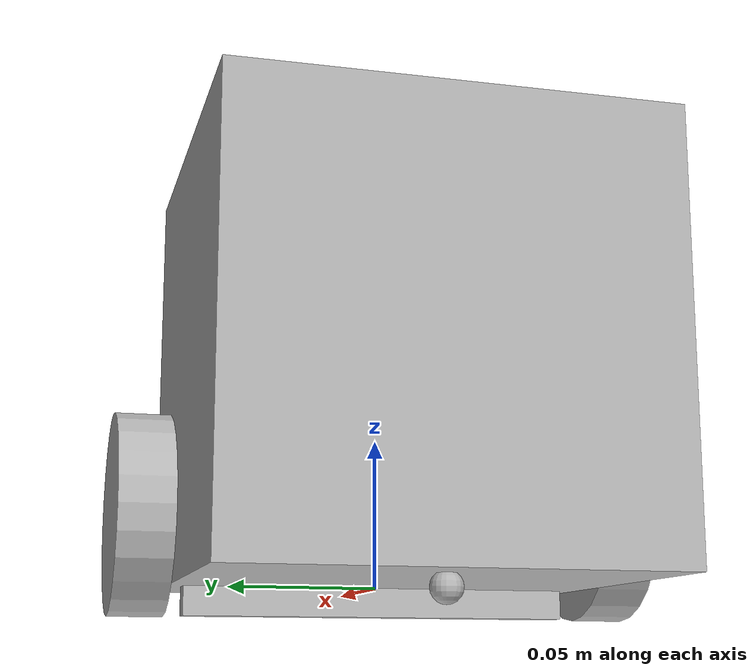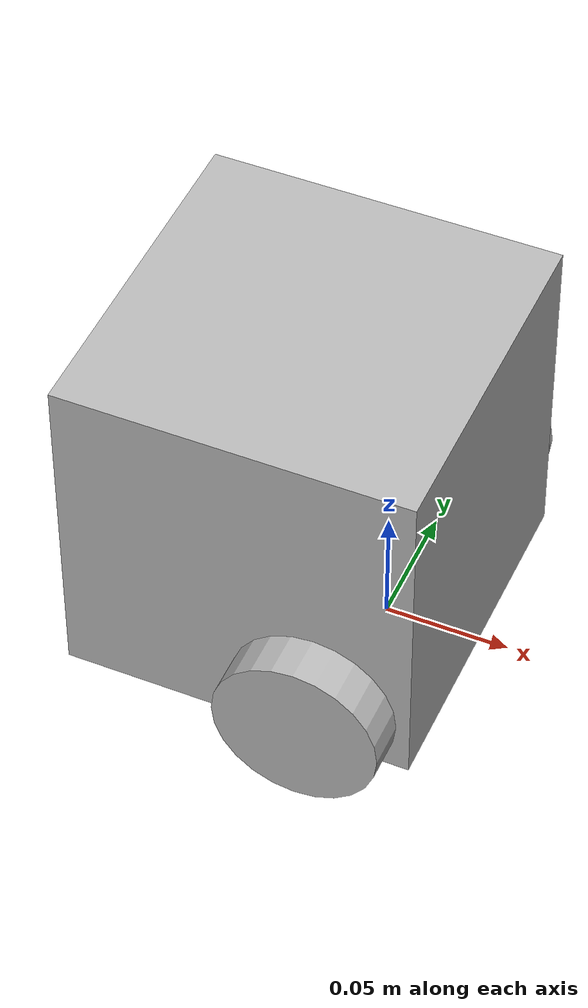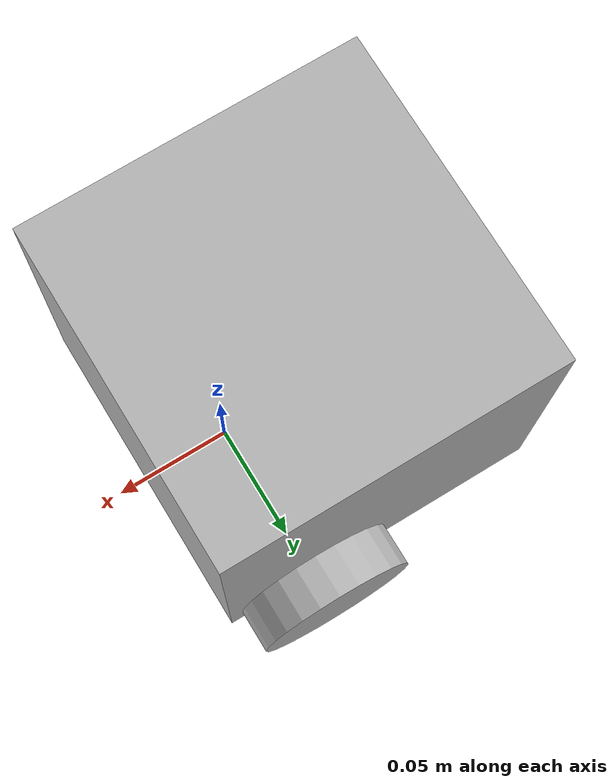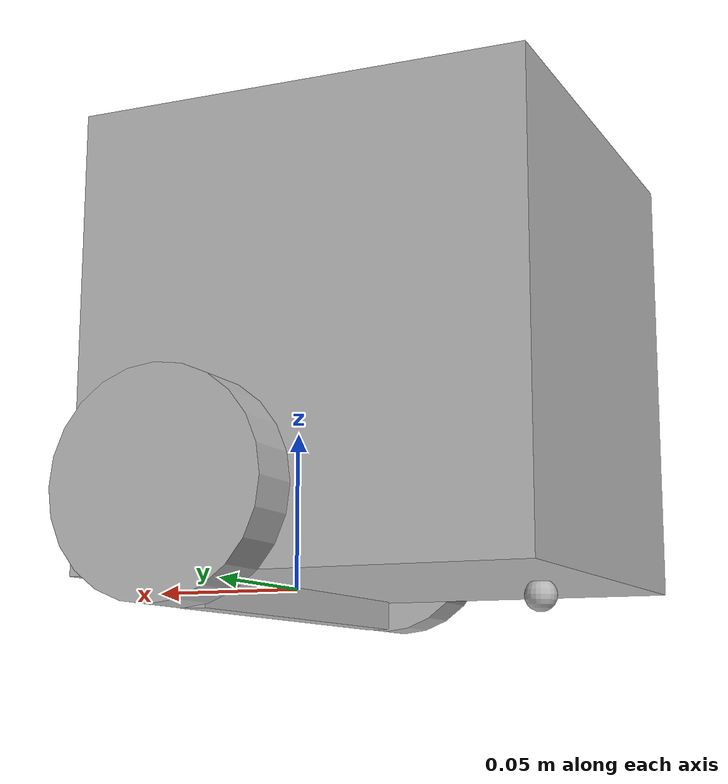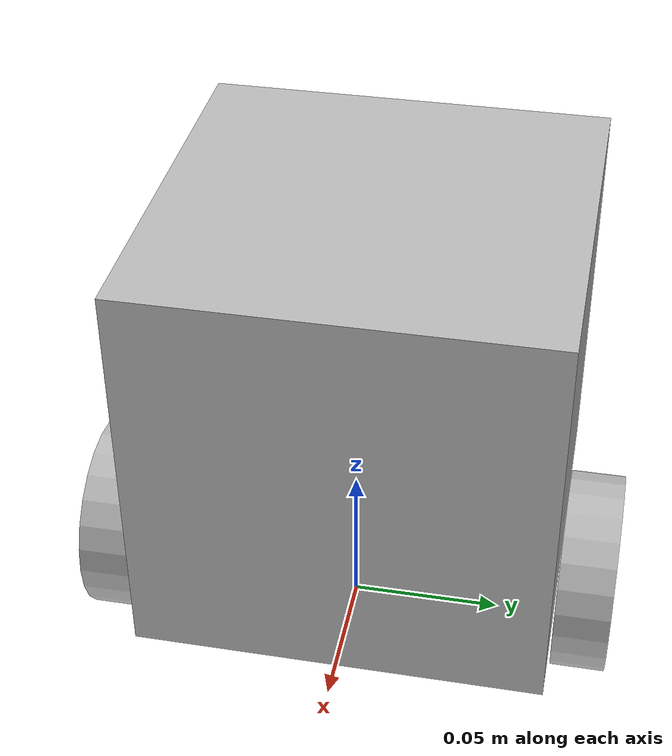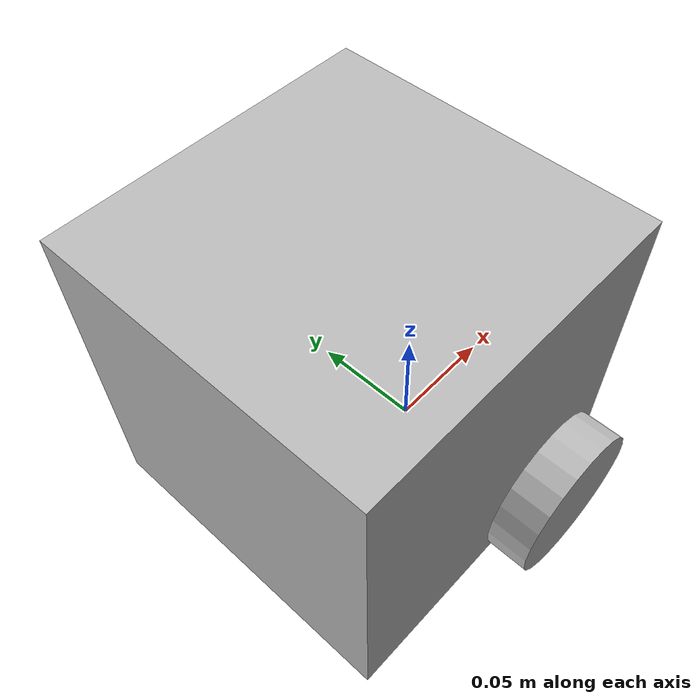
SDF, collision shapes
<?xml version="1.0" ?>
<sdf version="1.5">
  <model name="turtlebot3_burger_realsense">
    <plugin name="realsense_plugin" filename="librealsense_gazebo_plugin.so"/>
    <link name="base">

      <inertial>
        <pose>-0.032 0 0.070 0 0 0</pose>
        <inertia>
          <ixx>0.001</ixx>
          <ixy>0.000</ixy>
          <ixz>0.000</ixz>
          <iyy>0.001</iyy>
          <iyz>0.000</iyz>
          <izz>0.001</izz>
        </inertia>
        <mass>1.0</mass>
      </inertial>

      <collision name="base_collision">
        <pose>-0.032 0 0.070 0 0 0</pose>
        <geometry>
          <box>
            <size>0.140 0.140 0.140</size>
          </box>
        </geometry>
      </collision>

      <visual name="base_visual">
        <pose>-0.032 0 0 0 0 0</pose>
        <geometry>
          <mesh>
            <uri>model://turtlebot3_burger/meshes/burger_base.dae</uri>
            <scale>0.001 0.001 0.001</scale>
          </mesh>
        </geometry>
      </visual>

      <collision name="caster_collision">
        <pose>-0.081 0 -0.004 0 0 0</pose>
        <geometry>
          <sphere>
            <radius>0.005000</radius>
          </sphere>
        </geometry>
        <surface>
          <friction>
            <ode>
              <mu>100000.0</mu>
              <mu2>100000.0</mu2>
              <fdir1>0 0 0</fdir1>
              <slip1>0</slip1>
              <slip2>0</slip2>
            </ode>
          </friction>
        </surface>
      </collision>
    </link>

    <link name="left_wheel">

      <inertial>
        <pose>0 0.08 0.023 -1.57 0 0</pose>
        <inertia>
          <ixx>0.001</ixx>
          <ixy>0.000</ixy>
          <ixz>0.000</ixz>
          <iyy>0.001</iyy>
          <iyz>0.000</iyz>
          <izz>0.001</izz>
        </inertia>
        <mass>0.1</mass>
      </inertial>

      <collision name="left_wheel_collision">
        <pose>0 0.08 0.023 -1.57 0 0</pose>
        <geometry>
          <cylinder>
            <radius>0.033</radius>
            <length>0.018</length>
          </cylinder>
        </geometry>
          <surface>
          <!-- This friction pamareter don't contain reliable data!! -->
            <friction>
              <ode>
                <mu>100000.0</mu>
                <mu2>100000.0</mu2>
                <fdir1>0 0 0</fdir1>
                <slip1>0.0</slip1>
                <slip2>0.0</slip2>
              </ode>
          </friction>
        </surface>
      </collision>

      <visual name="left_wheel_visual">
        <pose>0 0.08 0.023 0 0 0</pose>
        <geometry>
          <mesh>
            <uri>model://turtlebot3_burger/meshes/left_tire.dae</uri>
            <scale>0.001 0.001 0.001</scale>
          </mesh>
        </geometry>
      </visual>
    </link>

    <link name="right_wheel">

      <inertial>
        <pose>0.0 -0.08 0.023 -1.57 0 0</pose>
        <inertia>
          <ixx>0.001</ixx>
          <ixy>0.000</ixy>
          <ixz>0.000</ixz>
          <iyy>0.001</iyy>
          <iyz>0.000</iyz>
          <izz>0.001</izz>
        </inertia>
        <mass>0.1</mass>
      </inertial>

      <collision name="right_wheel_collision">
        <pose>0.0 -0.08 0.023 -1.57 0 0</pose>
        <geometry>
          <cylinder>
            <radius>0.033</radius>
            <length>0.018</length>
          </cylinder>
        </geometry>
          <surface>
          <!-- This friction pamareter don't contain reliable data!! -->
            <friction>
              <ode>
                <mu>100000.0</mu>
                <mu2>100000.0</mu2>
                <fdir1>0 0 0</fdir1>
                <slip1>0.0</slip1>
                <slip2>0.0</slip2>
              </ode>
          </friction>
        </surface>
      </collision>

      <visual name="right_wheel_visual">
        <pose>0.0 -0.08 0.023 0 0 0</pose>
        <geometry>
          <mesh>
            <uri>model://turtlebot3_burger/meshes/right_tire.dae</uri>
            <scale>0.001 0.001 0.001</scale>
          </mesh>
        </geometry>
      </visual>
    </link>

    <joint name="left_wheel_joint" type="revolute">
      <parent>base</parent>
      <child>left_wheel</child>
      <pose>0.0 0.08 0.023 -1.57 0 0</pose>
      <axis>
        <xyz>0 1 0</xyz>
      </axis>
    </joint>

    <joint name="right_wheel_joint" type="revolute">
      <parent>base</parent>
      <child>right_wheel</child>
      <pose>0.0 -0.08 0.023 -1.57 0 0</pose>
      <axis>
        <xyz>0 1 0</xyz>
      </axis>
    </joint>

    <link name="RealSense">
      <inertial>
        <mass>0.0615752</mass>
        <inertia>
          <ixx>9.108e-05</ixx>
          <ixy>0</ixy>
          <ixz>0</ixz>
          <iyy>2.51e-06</iyy>
          <iyz>0</iyz>
          <izz>8.931e-05</izz>
        </inertia>
        <pose frame=''>0 0 0 0 0 0</pose>
      </inertial>
      <self_collide>0</self_collide>
      <enable_wind>0</enable_wind>
      <kinematic>0</kinematic>
      <gravity>1</gravity>
      <visual name="visual">
        <geometry>
          <mesh>
            <uri>model://turtlebot3_burger/meshes/realsense.dae</uri>
          </mesh>
        </geometry>
      </visual>
      <collision name='collision'>
        <laser_retro>0</laser_retro>
        <max_contacts>10</max_contacts>
        <pose frame=''>0 0 0 0 -0 0</pose>
        <geometry>
          <box>
            <size>0.0078 0.130 0.0192</size>
          </box>
        </geometry>
        <surface>
          <friction>
            <ode>
              <mu>1</mu>
              <mu2>1</mu2>
              <fdir1>0 0 0</fdir1>
              <slip1>0</slip1>
              <slip2>0</slip2>
            </ode>
            <torsional>
              <coefficient>1</coefficient>
              <patch_radius>0</patch_radius>
              <surface_radius>0</surface_radius>
              <use_patch_radius>1</use_patch_radius>
              <ode>
                <slip>0</slip>
              </ode>
            </torsional>
          </friction>
          <bounce>
            <restitution_coefficient>0</restitution_coefficient>
            <threshold>1e+06</threshold>
          </bounce>
          <contact>
            <collide_without_contact>0</collide_without_contact>
            <collide_without_contact_bitmask>1</collide_without_contact_bitmask>
            <collide_bitmask>1</collide_bitmask>
            <ode>
              <soft_cfm>0</soft_cfm>
              <soft_erp>0.2</soft_erp>
              <kp>1e+13</kp>
              <kd>1</kd>
              <max_vel>0.01</max_vel>
              <min_depth>0</min_depth>
            </ode>
            <bullet>
              <split_impulse>1</split_impulse>
              <split_impulse_penetration_threshold>-0.01</split_impulse_penetration_threshold>
              <soft_cfm>0</soft_cfm>
              <soft_erp>0.2</soft_erp>
              <kp>1e+13</kp>
              <kd>1</kd>
            </bullet>
          </contact>
        </surface>
      </collision>
      <sensor name="color" type="camera">
        <pose frame="">0 -0.046 0.004 0 0 0</pose>
        <camera name="__default__">
          <horizontal_fov>1.047</horizontal_fov>
          <image>
            <width>640</width>
            <height>480</height>
            <format>RGB_INT8</format>
          </image>
          <clip>
            <near>0.1</near>
            <far>100</far>
          </clip>
          <noise>
            <type>gaussian</type>
            <mean>0.0</mean>
            <stddev>0.007</stddev>
          </noise>
        </camera>
        <always_on>1</always_on>
        <update_rate>60</update_rate>
        <visualize>1</visualize>
      </sensor>
      <sensor name="ired1" type="camera">
        <pose frame="">0 -0.06 0.004 0 0 0</pose>
        <camera name="__default__">
          <horizontal_fov>1.047</horizontal_fov>
          <image>
            <width>640</width>
            <height>480</height>
            <format>L_INT8</format>
          </image>
          <clip>
            <near>0.1</near>
            <far>100</far>
          </clip>
          <noise>
            <type>gaussian</type>
            <mean>0.0</mean>
            <stddev>0.007</stddev>
          </noise>
        </camera>
        <always_on>1</always_on>
        <update_rate>60</update_rate>
        <visualize>0</visualize>
      </sensor>
      <sensor name="ired2" type="camera">
        <pose frame="">0 0.01 0.004 0 0 0</pose>
        <camera name="__default__">
          <horizontal_fov>1.047</horizontal_fov>
          <image>
            <width>640</width>
            <height>480</height>
            <format>L_INT8</format>
          </image>
          <clip>
            <near>0.1</near>
            <far>100</far>
          </clip>
          <noise>
            <type>gaussian</type>
            <mean>0.0</mean>
            <stddev>0.007</stddev>
          </noise>
        </camera>
        <always_on>1</always_on>
        <update_rate>60</update_rate>
        <visualize>0</visualize>
      </sensor>
      <sensor name="depth" type="depth">
        <pose frame="">0 -0.03 0.004 0 0 0</pose>
        <camera name="__default__">
          <horizontal_fov>1.047</horizontal_fov>
          <image>
            <width>640</width>
            <height>480</height>
          </image>
          <clip>
            <near>0.1</near>
            <far>100</far>
          </clip>
          <noise>
            <type>gaussian</type>
            <mean>0.0</mean>
            <stddev>0.007</stddev>
          </noise>
        </camera>
        <always_on>1</always_on>
        <update_rate>60</update_rate>
        <visualize>0</visualize>
      </sensor>
    </link>

    <joint name="realsense_joint" type="fixed">
      <parent>base</parent>
      <child>RealSense</child>
      <pose>-0.032 0 0.171 0 0 0</pose>
      <axis>
        <xyz>1 0 1</xyz>
        <use_parent_model_frame>true</use_parent_model_frame>
      </axis>
    </joint>

  </model>
</sdf>
